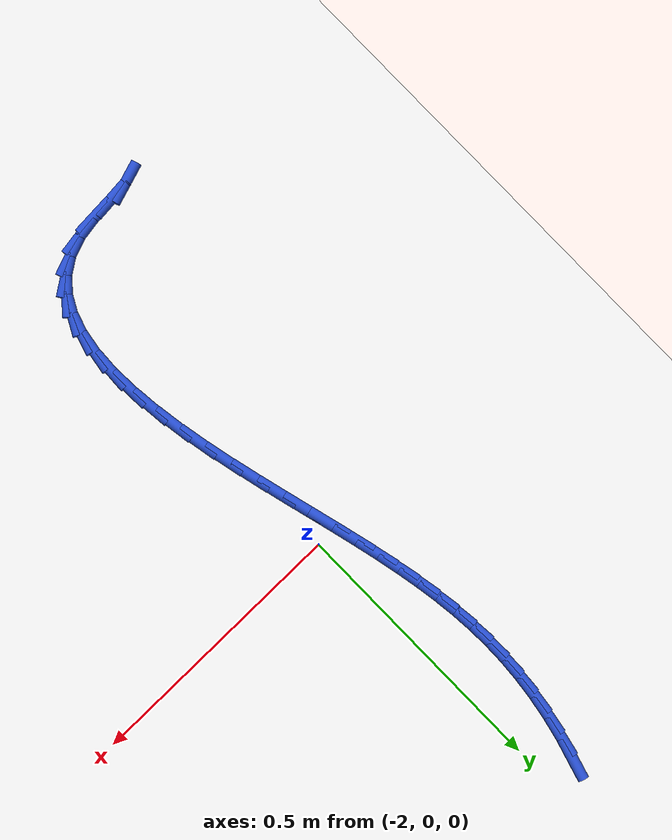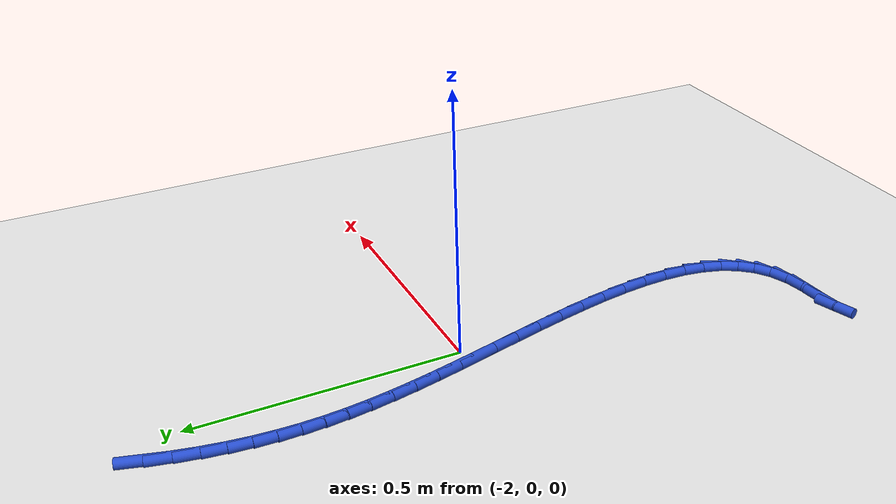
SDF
<sdf version="1.6">
 <world name="default">
  <model name="ground_plane">
   <static>1</static>
   <link name="link">
    <collision name="collision">
     <geometry><plane><normal>0 0 1</normal><size>100 100</size></plane></geometry>
     <surface><friction><ode><mu>100</mu><mu2>50</mu2></ode></friction></surface>
    </collision>
    <visual name="visual">
     <cast_shadows>0</cast_shadows>
     <geometry><plane><normal>0 0 1</normal><size>100 100</size></plane></geometry>
     <material>
      <script><uri>file://media/materials/scripts/gazebo.material</uri><name>Gazebo/WhiteGlow</name></script>
     </material>
    </visual>
   </link>
  </model>
  <model name="line">
   <link name="link_82">
    <pose>-2.057508914019447 0.5739858918866745 0.01 0 1.57 1.2857155305334727</pose>
    <collision name="collision">
     <geometry><cylinder><radius>0.01</radius><length>0.08</length></cylinder></geometry>
    </collision>
    <visual name="visual">
     <material>
      <script><name>Gazebo/Blue</name><uri>file://media/materials/scripts/gazebo.material</uri></script>
     </material>
     <geometry><cylinder><radius>0.01</radius><length>0.08</length></cylinder></geometry>
    </visual>
   </link>
   <link name="link_83">
    <pose>-2.070002227858182 0.5313558106469018 0.01 0 1.57 1.3454847382802289</pose>
    <collision name="collision">
     <geometry><cylinder><radius>0.01</radius><length>0.08</length></cylinder></geometry>
    </collision>
    <visual name="visual">
     <material>
      <script><name>Gazebo/Blue</name><uri>file://media/materials/scripts/gazebo.material</uri></script>
     </material>
     <geometry><cylinder><radius>0.01</radius><length>0.08</length></cylinder></geometry>
    </visual>
   </link>
   <link name="link_84">
    <pose>-2.0797783932899745 0.4887029987277014 0.01 0 1.57 1.3963062252807046</pose>
    <collision name="collision">
     <geometry><cylinder><radius>0.01</radius><length>0.08</length></cylinder></geometry>
    </collision>
    <visual name="visual">
     <material>
      <script><name>Gazebo/Blue</name><uri>file://media/materials/scripts/gazebo.material</uri></script>
     </material>
     <geometry><cylinder><radius>0.01</radius><length>0.08</length></cylinder></geometry>
    </visual>
   </link>
   <link name="link_85">
    <pose>-2.087117596425194 0.4470698838904761 0.01 0 1.57 1.4465593873791895</pose>
    <collision name="collision">
     <geometry><cylinder><radius>0.01</radius><length>0.08</length></cylinder></geometry>
    </collision>
    <visual name="visual">
     <material>
      <script><name>Gazebo/Blue</name><uri>file://media/materials/scripts/gazebo.material</uri></script>
     </material>
     <geometry><cylinder><radius>0.01</radius><length>0.08</length></cylinder></geometry>
    </visual>
   </link>
   <link name="link_86">
    <pose>-2.092176628533213 0.40655876942202274 0.01 0 1.57 1.4985463021024972</pose>
    <collision name="collision">
     <geometry><cylinder><radius>0.01</radius><length>0.08</length></cylinder></geometry>
    </collision>
    <visual name="visual">
     <material>
      <script><name>Gazebo/Blue</name><uri>file://media/materials/scripts/gazebo.material</uri></script>
     </material>
     <geometry><cylinder><radius>0.01</radius><length>0.08</length></cylinder></geometry>
    </visual>
   </link>
   <link name="link_87">
    <pose>-2.0950528321686894 0.36681902888181017 0.01 0 1.57 1.5506998985859703</pose>
    <collision name="collision">
     <geometry><cylinder><radius>0.01</radius><length>0.08</length></cylinder></geometry>
    </collision>
    <visual name="visual">
     <material>
      <script><name>Gazebo/Blue</name><uri>file://media/materials/scripts/gazebo.material</uri></script>
     </material>
     <geometry><cylinder><radius>0.01</radius><length>0.08</length></cylinder></geometry>
    </visual>
   </link>
   <link name="link_88">
    <pose>-2.095843168312658 0.3274971286842453 0.01 0 1.57 -1.5402748898176801</pose>
    <collision name="collision">
     <geometry><cylinder><radius>0.01</radius><length>0.08</length></cylinder></geometry>
    </collision>
    <visual name="visual">
     <material>
      <script><name>Gazebo/Blue</name><uri>file://media/materials/scripts/gazebo.material</uri></script>
     </material>
     <geometry><cylinder><radius>0.01</radius><length>0.08</length></cylinder></geometry>
    </visual>
   </link>
   <link name="link_89">
    <pose>-2.094644597946153 0.28823953524373463 0.01 0 1.57 -1.4928065564334612</pose>
    <collision name="collision">
     <geometry><cylinder><radius>0.01</radius><length>0.08</length></cylinder></geometry>
    </collision>
    <visual name="visual">
     <material>
      <script><name>Gazebo/Blue</name><uri>file://media/materials/scripts/gazebo.material</uri></script>
     </material>
     <geometry><cylinder><radius>0.01</radius><length>0.08</length></cylinder></geometry>
    </visual>
   </link>
   <link name="link_90">
    <pose>-2.0915540820502088 0.24869271497468473 0.01 0 1.57 -1.4498284818555678</pose>
    <collision name="collision">
     <geometry><cylinder><radius>0.01</radius><length>0.08</length></cylinder></geometry>
    </collision>
    <visual name="visual">
     <material>
      <script><name>Gazebo/Blue</name><uri>file://media/materials/scripts/gazebo.material</uri></script>
     </material>
     <geometry><cylinder><radius>0.01</radius><length>0.08</length></cylinder></geometry>
    </visual>
   </link>
   <link name="link_91">
    <pose>-2.086668581605861 0.20850313429150227 0.01 0 1.57 -1.412288224872721</pose>
    <collision name="collision">
     <geometry><cylinder><radius>0.01</radius><length>0.08</length></cylinder></geometry>
    </collision>
    <visual name="visual">
     <material>
      <script><name>Gazebo/Blue</name><uri>file://media/materials/scripts/gazebo.material</uri></script>
     </material>
     <geometry><cylinder><radius>0.01</radius><length>0.08</length></cylinder></geometry>
    </visual>
   </link>
   <link name="link_92">
    <pose>-2.0800850575941428 0.16731725960859384 0.01 0 1.57 -1.3807027591252603</pose>
    <collision name="collision">
     <geometry><cylinder><radius>0.01</radius><length>0.08</length></cylinder></geometry>
    </collision>
    <visual name="visual">
     <material>
      <script><name>Gazebo/Blue</name><uri>file://media/materials/scripts/gazebo.material</uri></script>
     </material>
     <geometry><cylinder><radius>0.01</radius><length>0.08</length></cylinder></geometry>
    </visual>
   </link>
   <link name="link_93">
    <pose>-2.071900470996088 0.12478155734036601 0.01 0 1.57 -1.3551928666721031</pose>
    <collision name="collision">
     <geometry><cylinder><radius>0.01</radius><length>0.08</length></cylinder></geometry>
    </collision>
    <visual name="visual">
     <material>
      <script><name>Gazebo/Blue</name><uri>file://media/materials/scripts/gazebo.material</uri></script>
     </material>
     <geometry><cylinder><radius>0.01</radius><length>0.08</length></cylinder></geometry>
    </visual>
   </link>
   <link name="link_94">
    <pose>-2.0622117827927333 0.08054249390122553 0.01 0 1.57 -1.3355618334647077</pose>
    <collision name="collision">
     <geometry><cylinder><radius>0.01</radius><length>0.08</length></cylinder></geometry>
    </collision>
    <visual name="visual">
     <material>
      <script><name>Gazebo/Blue</name><uri>file://media/materials/scripts/gazebo.material</uri></script>
     </material>
     <geometry><cylinder><radius>0.01</radius><length>0.08</length></cylinder></geometry>
    </visual>
   </link>
   <link name="link_95">
    <pose>-2.051115953965111 0.03424653570557891 0.01 0 1.57 -1.3218311796392037</pose>
    <collision name="collision">
     <geometry><cylinder><radius>0.01</radius><length>0.08</length></cylinder></geometry>
    </collision>
    <visual name="visual">
     <material>
      <script><name>Gazebo/Blue</name><uri>file://media/materials/scripts/gazebo.material</uri></script>
     </material>
     <geometry><cylinder><radius>0.01</radius><length>0.08</length></cylinder></geometry>
    </visual>
   </link>
   <link name="link_96">
    <pose>-2.038761327720435 -0.01434783072450516 0.01 0 1.57 -1.3154730123401082</pose>
    <collision name="collision">
     <geometry><cylinder><radius>0.01</radius><length>0.08</length></cylinder></geometry>
    </collision>
    <visual name="visual">
     <material>
      <script><name>Gazebo/Blue</name><uri>file://media/materials/scripts/gazebo.material</uri></script>
     </material>
     <geometry><cylinder><radius>0.01</radius><length>0.08</length></cylinder></geometry>
    </visual>
   </link>
   <link name="link_97">
    <pose>-2.0255700762034627 -0.06488513525323447 0.01 0 1.57 -1.3161773864782258</pose>
    <collision name="collision">
     <geometry><cylinder><radius>0.01</radius><length>0.08</length></cylinder></geometry>
    </collision>
    <visual name="visual">
     <material>
      <script><name>Gazebo/Blue</name><uri>file://media/materials/scripts/gazebo.material</uri></script>
     </material>
     <geometry><cylinder><radius>0.01</radius><length>0.08</length></cylinder></geometry>
    </visual>
   </link>
   <link name="link_98">
    <pose>-2.0120552254883695 -0.11681183405841425 0.01 0 1.57 -1.3234152736450793</pose>
    <collision name="collision">
     <geometry><cylinder><radius>0.01</radius><length>0.08</length></cylinder></geometry>
    </collision>
    <visual name="visual">
     <material>
      <script><name>Gazebo/Blue</name><uri>file://media/materials/scripts/gazebo.material</uri></script>
     </material>
     <geometry><cylinder><radius>0.01</radius><length>0.08</length></cylinder></geometry>
    </visual>
   </link>
   <link name="link_99">
    <pose>-1.9987298613798516 -0.16957425309734048 0.01 0 1.57 -1.3371752314655347</pose>
    <collision name="collision">
     <geometry><cylinder><radius>0.01</radius><length>0.08</length></cylinder></geometry>
    </collision>
    <visual name="visual">
     <material>
      <script><name>Gazebo/Blue</name><uri>file://media/materials/scripts/gazebo.material</uri></script>
     </material>
     <geometry><cylinder><radius>0.01</radius><length>0.08</length></cylinder></geometry>
    </visual>
   </link>
   <link name="link_100">
    <pose>-1.9861070696826062 -0.22261871832730917 0.01 0 1.57 -1.3579160832898214</pose>
    <collision name="collision">
     <geometry><cylinder><radius>0.01</radius><length>0.08</length></cylinder></geometry>
    </collision>
    <visual name="visual">
     <material>
      <script><name>Gazebo/Blue</name><uri>file://media/materials/scripts/gazebo.material</uri></script>
     </material>
     <geometry><cylinder><radius>0.01</radius><length>0.08</length></cylinder></geometry>
    </visual>
   </link>
   <link name="link_101">
    <pose>-1.9746999362013318 -0.2753915557056163 0.01 0 1.57 -1.386597388129596</pose>
    <collision name="collision">
     <geometry><cylinder><radius>0.01</radius><length>0.08</length></cylinder></geometry>
    </collision>
    <visual name="visual">
     <material>
      <script><name>Gazebo/Blue</name><uri>file://media/materials/scripts/gazebo.material</uri></script>
     </material>
     <geometry><cylinder><radius>0.01</radius><length>0.08</length></cylinder></geometry>
    </visual>
   </link>
   <link name="link_102">
    <pose>-1.9650215467407255 -0.3273390911895579 0.01 0 1.57 -1.4247839382199476</pose>
    <collision name="collision">
     <geometry><cylinder><radius>0.01</radius><length>0.08</length></cylinder></geometry>
    </collision>
    <visual name="visual">
     <material>
      <script><name>Gazebo/Blue</name><uri>file://media/materials/scripts/gazebo.material</uri></script>
     </material>
     <geometry><cylinder><radius>0.01</radius><length>0.08</length></cylinder></geometry>
    </visual>
   </link>
   <link name="link_103">
    <pose>-1.957584987105484 -0.3779076507364297 0.01 0 1.57 -1.4748329904650315</pose>
    <collision name="collision">
     <geometry><cylinder><radius>0.01</radius><length>0.08</length></cylinder></geometry>
    </collision>
    <visual name="visual">
     <material>
      <script><name>Gazebo/Blue</name><uri>file://media/materials/scripts/gazebo.material</uri></script>
     </material>
     <geometry><cylinder><radius>0.01</radius><length>0.08</length></cylinder></geometry>
    </visual>
   </link>
   <link name="link_104">
    <pose>-1.952903343100305 -0.4265435603035278 0.01 0 1.57 -1.5401741519632017</pose>
    <collision name="collision">
     <geometry><cylinder><radius>0.01</radius><length>0.08</length></cylinder></geometry>
    </collision>
    <visual name="visual">
     <material>
      <script><name>Gazebo/Blue</name><uri>file://media/materials/scripts/gazebo.material</uri></script>
     </material>
     <geometry><cylinder><radius>0.01</radius><length>0.08</length></cylinder></geometry>
    </visual>
   </link>
   <link name="link_105">
    <pose>-1.9514897005298864 -0.47269314584814837 0.01 0 1.57 1.5159345398952682</pose>
    <collision name="collision">
     <geometry><cylinder><radius>0.01</radius><length>0.08</length></cylinder></geometry>
    </collision>
    <visual name="visual">
     <material>
      <script><name>Gazebo/Blue</name><uri>file://media/materials/scripts/gazebo.material</uri></script>
     </material>
     <geometry><cylinder><radius>0.01</radius><length>0.08</length></cylinder></geometry>
    </visual>
   </link>
   <link name="link_106">
    <pose>-1.9538571451989244 -0.5158027333275871 0.01 0 1.57 1.403785999545832</pose>
    <collision name="collision">
     <geometry><cylinder><radius>0.01</radius><length>0.08</length></cylinder></geometry>
    </collision>
    <visual name="visual">
     <material>
      <script><name>Gazebo/Blue</name><uri>file://media/materials/scripts/gazebo.material</uri></script>
     </material>
     <geometry><cylinder><radius>0.01</radius><length>0.08</length></cylinder></geometry>
    </visual>
   </link>
   <link name="link_107">
    <pose>-1.960518762912118 -0.55531864869914 0.01 0 1.57 1.2572271160006645</pose>
    <collision name="collision">
     <geometry><cylinder><radius>0.01</radius><length>0.08</length></cylinder></geometry>
    </collision>
    <visual name="visual">
     <material>
      <script><name>Gazebo/Blue</name><uri>file://media/materials/scripts/gazebo.material</uri></script>
     </material>
     <geometry><cylinder><radius>0.01</radius><length>0.08</length></cylinder></geometry>
    </visual>
   </link>
   <link name="link_108">
    <pose>-1.9719876394741633 -0.5906872179201033 0.01 0 1.57 1.0699061856715835</pose>
    <collision name="collision">
     <geometry><cylinder><radius>0.01</radius><length>0.08</length></cylinder></geometry>
    </collision>
    <visual name="visual">
     <material>
      <script><name>Gazebo/Blue</name><uri>file://media/materials/scripts/gazebo.material</uri></script>
     </material>
     <geometry><cylinder><radius>0.01</radius><length>0.08</length></cylinder></geometry>
    </visual>
   </link>
   <link name="link_109">
    <pose>-1.9887768606897587 -0.6213547669477727 0.01 0 1.57 0.8434192315366823</pose>
    <collision name="collision">
     <geometry><cylinder><radius>0.01</radius><length>0.08</length></cylinder></geometry>
    </collision>
    <visual name="visual">
     <material>
      <script><name>Gazebo/Blue</name><uri>file://media/materials/scripts/gazebo.material</uri></script>
     </material>
     <geometry><cylinder><radius>0.01</radius><length>0.08</length></cylinder></geometry>
    </visual>
   </link>
   <link name="link_110">
    <pose>-2.011399512363601 -0.6467676217394442 0.01 0 1.57 0.5949415035390232</pose>
    <collision name="collision">
     <geometry><cylinder><radius>0.01</radius><length>0.08</length></cylinder></geometry>
    </collision>
    <visual name="visual">
     <material>
      <script><name>Gazebo/Blue</name><uri>file://media/materials/scripts/gazebo.material</uri></script>
     </material>
     <geometry><cylinder><radius>0.01</radius><length>0.08</length></cylinder></geometry>
    </visual>
   </link>
   <link name="link_111">
    <pose>-2.0403686803003875 -0.6663721082524139 0.01 0 1.57 0.3540312512755999</pose>
    <collision name="collision">
     <geometry><cylinder><radius>0.01</radius><length>0.08</length></cylinder></geometry>
    </collision>
    <visual name="visual">
     <material>
      <script><name>Gazebo/Blue</name><uri>file://media/materials/scripts/gazebo.material</uri></script>
     </material>
     <geometry><cylinder><radius>0.01</radius><length>0.08</length></cylinder></geometry>
    </visual>
   </link>
   <link name="link_112">
    <pose>-2.076197450304816 -0.6796145524439778 0.01 0 1.57 0.15393384888688652</pose>
    <collision name="collision">
     <geometry><cylinder><radius>0.01</radius><length>0.08</length></cylinder></geometry>
    </collision>
    <visual name="visual">
     <material>
      <script><name>Gazebo/Blue</name><uri>file://media/materials/scripts/gazebo.material</uri></script>
     </material>
     <geometry><cylinder><radius>0.01</radius><length>0.08</length></cylinder></geometry>
    </visual>
   </link>
   <link name="link_113">
    <pose>-2.118851048223725 -0.6862327417598152 0.01 0 1.57 0.060888675808676206</pose>
    <collision name="collision">
     <geometry><cylinder><radius>0.01</radius><length>0.08</length></cylinder></geometry>
    </collision>
    <visual name="visual">
     <material>
      <script><name>Gazebo/Blue</name><uri>file://media/materials/scripts/gazebo.material</uri></script>
     </material>
     <geometry><cylinder><radius>0.01</radius><length>0.08</length></cylinder></geometry>
    </visual>
   </link>
   <link name="link_114">
    <pose>-2.162758845283188 -0.6889095382109193 0.01 0 1.57 0.08573957597292166</pose>
    <collision name="collision">
     <geometry><cylinder><radius>0.01</radius><length>0.08</length></cylinder></geometry>
    </collision>
    <visual name="visual">
     <material>
      <script><name>Gazebo/Blue</name><uri>file://media/materials/scripts/gazebo.material</uri></script>
     </material>
     <geometry><cylinder><radius>0.01</radius><length>0.08</length></cylinder></geometry>
    </visual>
   </link>
   <link name="link_115">
    <pose>-2.19913864939003 -0.6920363930699416 0.01 0 1.57 0.3084121518869284</pose>
    <collision name="collision">
     <geometry><cylinder><radius>0.01</radius><length>0.08</length></cylinder></geometry>
    </collision>
    <visual name="visual">
     <material>
      <script><name>Gazebo/Blue</name><uri>file://media/materials/scripts/gazebo.material</uri></script>
     </material>
     <geometry><cylinder><radius>0.01</radius><length>0.08</length></cylinder></geometry>
    </visual>
   </link>
  </model>
 </world>
</sdf>
